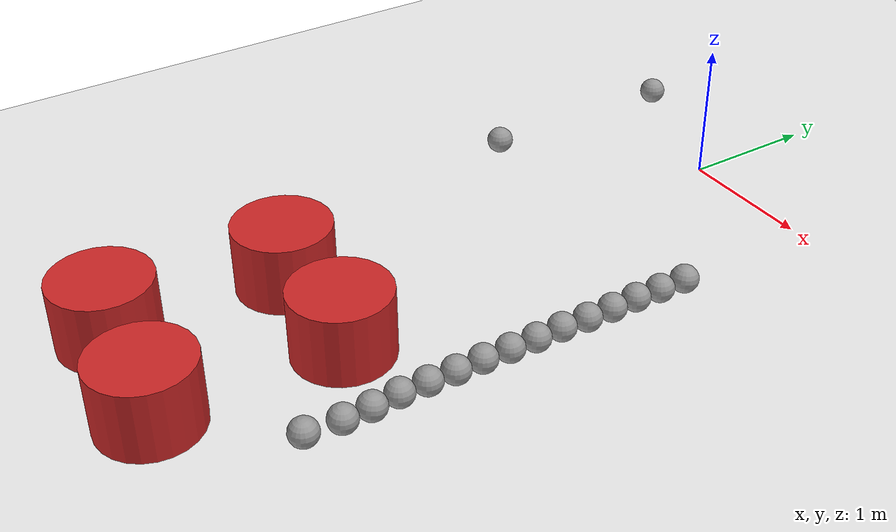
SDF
<sdf version="1.7">
 <world name="default">
  <model name="ground_plane">
   <static>1</static>
   <link name="link">
    <collision name="collision">
     <geometry><plane><normal>0 0 1</normal><size>100 100</size></plane></geometry>
     <surface>
      <contact><collide_bitmask>65535</collide_bitmask></contact>
      <friction><ode><mu>100</mu><mu2>50</mu2></ode></friction>
     </surface>
    </collision>
    <visual name="visual">
     <cast_shadows>0</cast_shadows>
     <geometry><plane><normal>0 0 1</normal><size>100 100</size></plane></geometry>
     <material>
      <script><uri>file://media/materials/scripts/gazebo.material</uri><name>Gazebo/White</name></script>
     </material>
    </visual>
   </link>
  </model>
  <model name="sphere_1">
   <link name="link_0">
    <inertial>
     <mass>1</mass>
     <inertia><ixx>0.1</ixx><ixy>0</ixy><ixz>0</ixz><iyy>0.1</iyy><iyz>0</iyz><izz>0.1</izz></inertia>
    </inertial>
    <visual name="visual">
     <geometry><sphere><radius>0.1</radius></sphere></geometry>
     <material>
      <lighting>1</lighting>
      <script><uri>file://media/materials/scripts/gazebo.material</uri><name>Gazebo/Grey</name></script>
      <shader type="pixel"><normal_map>__default__</normal_map></shader>
      <ambient>0.3 0.3 0.3 1</ambient>
      <diffuse>0.7 0.7 0.7 1</diffuse>
      <specular>0.01 0.01 0.01 1</specular>
      <emissive>0 0 0 1</emissive>
     </material>
    </visual>
    <collision name="collision">
     <geometry><sphere><radius>0.1</radius></sphere></geometry>
     <surface>
      <friction>
       <ode><mu>1</mu><mu2>1</mu2><fdir1>0 0 0</fdir1><slip1>0</slip1><slip2>0</slip2></ode>
       <torsional>
        <coefficient>1</coefficient>
        <patch_radius>0</patch_radius>
        <surface_radius>0</surface_radius>
        <use_patch_radius>1</use_patch_radius>
        <ode><slip>0</slip></ode>
       </torsional>
      </friction>
      <bounce><restitution_coefficient>0</restitution_coefficient><threshold>1e+06</threshold></bounce>
      <contact>
       <collide_without_contact>0</collide_without_contact>
       <collide_without_contact_bitmask>1</collide_without_contact_bitmask>
       <collide_bitmask>1</collide_bitmask>
       <ode>
        <soft_cfm>0</soft_cfm>
        <soft_erp>0.2</soft_erp>
        <kp>1e+13</kp>
        <kd>1</kd>
        <max_vel>0.01</max_vel>
        <min_depth>0</min_depth>
       </ode>
       <bullet>
        <split_impulse>1</split_impulse>
        <split_impulse_penetration_threshold>-0.01</split_impulse_penetration_threshold>
        <soft_cfm>0</soft_cfm>
        <soft_erp>0.2</soft_erp>
        <kp>1e+13</kp>
        <kd>1</kd>
       </bullet>
      </contact>
     </surface>
    </collision>
   </link>
   <static>0</static>
   <pose>-1.08492 0.403884 0.1 -0.010826 0.002979 -0.008224</pose>
  </model>
  <model name="sphere_12">
   <link name="link_0">
    <inertial>
     <mass>1</mass>
     <inertia><ixx>0.1</ixx><ixy>0</ixy><ixz>0</ixz><iyy>0.1</iyy><iyz>0</iyz><izz>0.1</izz></inertia>
    </inertial>
    <visual name="visual">
     <geometry><sphere><radius>0.1</radius></sphere></geometry>
     <material>
      <lighting>1</lighting>
      <script><uri>file://media/materials/scripts/gazebo.material</uri><name>Gazebo/Grey</name></script>
      <shader type="pixel"><normal_map>__default__</normal_map></shader>
      <ambient>0.3 0.3 0.3 1</ambient>
      <diffuse>0.7 0.7 0.7 1</diffuse>
      <specular>0.01 0.01 0.01 1</specular>
      <emissive>0 0 0 1</emissive>
     </material>
    </visual>
    <collision name="collision">
     <geometry><sphere><radius>0.1</radius></sphere></geometry>
     <surface>
      <friction>
       <ode><mu>1</mu><mu2>1</mu2><fdir1>0 0 0</fdir1><slip1>0</slip1><slip2>0</slip2></ode>
       <torsional>
        <coefficient>1</coefficient>
        <patch_radius>0</patch_radius>
        <surface_radius>0</surface_radius>
        <use_patch_radius>1</use_patch_radius>
        <ode><slip>0</slip></ode>
       </torsional>
      </friction>
      <bounce><restitution_coefficient>0</restitution_coefficient><threshold>1e+06</threshold></bounce>
      <contact>
       <collide_without_contact>0</collide_without_contact>
       <collide_without_contact_bitmask>1</collide_without_contact_bitmask>
       <collide_bitmask>1</collide_bitmask>
       <ode>
        <soft_cfm>0</soft_cfm>
        <soft_erp>0.2</soft_erp>
        <kp>1e+13</kp>
        <kd>1</kd>
        <max_vel>0.01</max_vel>
        <min_depth>0</min_depth>
       </ode>
       <bullet>
        <split_impulse>1</split_impulse>
        <split_impulse_penetration_threshold>-0.01</split_impulse_penetration_threshold>
        <soft_cfm>0</soft_cfm>
        <soft_erp>0.2</soft_erp>
        <kp>1e+13</kp>
        <kd>1</kd>
       </bullet>
      </contact>
     </surface>
    </collision>
   </link>
   <static>0</static>
   <pose>-1.09033 -1.14062 0.1 0 -0 0</pose>
  </model>
  <model name="sphere_38">
   <link name="link_0">
    <inertial>
     <mass>1</mass>
     <inertia><ixx>0.1</ixx><ixy>0</ixy><ixz>0</ixz><iyy>0.1</iyy><iyz>0</iyz><izz>0.1</izz></inertia>
    </inertial>
    <visual name="visual">
     <geometry><sphere><radius>0.1</radius></sphere></geometry>
     <material>
      <lighting>1</lighting>
      <script><uri>file://media/materials/scripts/gazebo.material</uri><name>Gazebo/Grey</name></script>
      <shader type="pixel"><normal_map>__default__</normal_map></shader>
      <ambient>0.3 0.3 0.3 1</ambient>
      <diffuse>0.7 0.7 0.7 1</diffuse>
      <specular>0.01 0.01 0.01 1</specular>
      <emissive>0 0 0 1</emissive>
     </material>
    </visual>
    <collision name="collision">
     <geometry><sphere><radius>0.1</radius></sphere></geometry>
     <surface>
      <friction>
       <ode><mu>1</mu><mu2>1</mu2><fdir1>0 0 0</fdir1><slip1>0</slip1><slip2>0</slip2></ode>
       <torsional>
        <coefficient>1</coefficient>
        <patch_radius>0</patch_radius>
        <surface_radius>0</surface_radius>
        <use_patch_radius>1</use_patch_radius>
        <ode><slip>0</slip></ode>
       </torsional>
      </friction>
      <bounce><restitution_coefficient>0</restitution_coefficient><threshold>1e+06</threshold></bounce>
      <contact>
       <collide_without_contact>0</collide_without_contact>
       <collide_without_contact_bitmask>1</collide_without_contact_bitmask>
       <collide_bitmask>1</collide_bitmask>
       <ode>
        <soft_cfm>0</soft_cfm>
        <soft_erp>0.2</soft_erp>
        <kp>1e+13</kp>
        <kd>1</kd>
        <max_vel>0.01</max_vel>
        <min_depth>0</min_depth>
       </ode>
       <bullet>
        <split_impulse>1</split_impulse>
        <split_impulse_penetration_threshold>-0.01</split_impulse_penetration_threshold>
        <soft_cfm>0</soft_cfm>
        <soft_erp>0.2</soft_erp>
        <kp>1e+13</kp>
        <kd>1</kd>
       </bullet>
      </contact>
     </surface>
    </collision>
   </link>
   <static>0</static>
   <pose>1.1388 -3.75583 0.1 -0.00572 0.049658 -0.007044</pose>
  </model>
  <model name="sphere_39">
   <link name="link_0">
    <inertial>
     <mass>1</mass>
     <inertia><ixx>0.1</ixx><ixy>0</ixy><ixz>0</ixz><iyy>0.1</iyy><iyz>0</iyz><izz>0.1</izz></inertia>
    </inertial>
    <visual name="visual">
     <geometry><sphere><radius>0.1</radius></sphere></geometry>
     <material>
      <lighting>1</lighting>
      <script><uri>file://media/materials/scripts/gazebo.material</uri><name>Gazebo/Grey</name></script>
      <shader type="pixel"><normal_map>__default__</normal_map></shader>
      <ambient>0.3 0.3 0.3 1</ambient>
      <diffuse>0.7 0.7 0.7 1</diffuse>
      <specular>0.01 0.01 0.01 1</specular>
      <emissive>0 0 0 1</emissive>
     </material>
    </visual>
    <collision name="collision">
     <geometry><sphere><radius>0.1</radius></sphere></geometry>
     <surface>
      <friction>
       <ode><mu>1</mu><mu2>1</mu2><fdir1>0 0 0</fdir1><slip1>0</slip1><slip2>0</slip2></ode>
       <torsional>
        <coefficient>1</coefficient>
        <patch_radius>0</patch_radius>
        <surface_radius>0</surface_radius>
        <use_patch_radius>1</use_patch_radius>
        <ode><slip>0</slip></ode>
       </torsional>
      </friction>
      <bounce><restitution_coefficient>0</restitution_coefficient><threshold>1e+06</threshold></bounce>
      <contact>
       <collide_without_contact>0</collide_without_contact>
       <collide_without_contact_bitmask>1</collide_without_contact_bitmask>
       <collide_bitmask>1</collide_bitmask>
       <ode>
        <soft_cfm>0</soft_cfm>
        <soft_erp>0.2</soft_erp>
        <kp>1e+13</kp>
        <kd>1</kd>
        <max_vel>0.01</max_vel>
        <min_depth>0</min_depth>
       </ode>
       <bullet>
        <split_impulse>1</split_impulse>
        <split_impulse_penetration_threshold>-0.01</split_impulse_penetration_threshold>
        <soft_cfm>0</soft_cfm>
        <soft_erp>0.2</soft_erp>
        <kp>1e+13</kp>
        <kd>1</kd>
       </bullet>
      </contact>
     </surface>
    </collision>
   </link>
   <static>0</static>
   <pose>1.13443 -3.55575 0.1 -0.101295 0.023621 0.037882</pose>
  </model>
  <model name="sphere_40">
   <link name="link_0">
    <inertial>
     <mass>1</mass>
     <inertia><ixx>0.1</ixx><ixy>0</ixy><ixz>0</ixz><iyy>0.1</iyy><iyz>0</iyz><izz>0.1</izz></inertia>
    </inertial>
    <visual name="visual">
     <geometry><sphere><radius>0.1</radius></sphere></geometry>
     <material>
      <lighting>1</lighting>
      <script><uri>file://media/materials/scripts/gazebo.material</uri><name>Gazebo/Grey</name></script>
      <shader type="pixel"><normal_map>__default__</normal_map></shader>
      <ambient>0.3 0.3 0.3 1</ambient>
      <diffuse>0.7 0.7 0.7 1</diffuse>
      <specular>0.01 0.01 0.01 1</specular>
      <emissive>0 0 0 1</emissive>
     </material>
    </visual>
    <collision name="collision">
     <geometry><sphere><radius>0.1</radius></sphere></geometry>
     <surface>
      <friction>
       <ode><mu>1</mu><mu2>1</mu2><fdir1>0 0 0</fdir1><slip1>0</slip1><slip2>0</slip2></ode>
       <torsional>
        <coefficient>1</coefficient>
        <patch_radius>0</patch_radius>
        <surface_radius>0</surface_radius>
        <use_patch_radius>1</use_patch_radius>
        <ode><slip>0</slip></ode>
       </torsional>
      </friction>
      <bounce><restitution_coefficient>0</restitution_coefficient><threshold>1e+06</threshold></bounce>
      <contact>
       <collide_without_contact>0</collide_without_contact>
       <collide_without_contact_bitmask>1</collide_without_contact_bitmask>
       <collide_bitmask>1</collide_bitmask>
       <ode>
        <soft_cfm>0</soft_cfm>
        <soft_erp>0.2</soft_erp>
        <kp>1e+13</kp>
        <kd>1</kd>
        <max_vel>0.01</max_vel>
        <min_depth>0</min_depth>
       </ode>
       <bullet>
        <split_impulse>1</split_impulse>
        <split_impulse_penetration_threshold>-0.01</split_impulse_penetration_threshold>
        <soft_cfm>0</soft_cfm>
        <soft_erp>0.2</soft_erp>
        <kp>1e+13</kp>
        <kd>1</kd>
       </bullet>
      </contact>
     </surface>
    </collision>
   </link>
   <static>0</static>
   <pose>1.11807 -3.35616 0.1 0.003486 -0.017971 0.006857</pose>
  </model>
  <model name="sphere_41">
   <link name="link_0">
    <inertial>
     <mass>1</mass>
     <inertia><ixx>0.1</ixx><ixy>0</ixy><ixz>0</ixz><iyy>0.1</iyy><iyz>0</iyz><izz>0.1</izz></inertia>
    </inertial>
    <visual name="visual">
     <geometry><sphere><radius>0.1</radius></sphere></geometry>
     <material>
      <lighting>1</lighting>
      <script><uri>file://media/materials/scripts/gazebo.material</uri><name>Gazebo/Grey</name></script>
      <shader type="pixel"><normal_map>__default__</normal_map></shader>
      <ambient>0.3 0.3 0.3 1</ambient>
      <diffuse>0.7 0.7 0.7 1</diffuse>
      <specular>0.01 0.01 0.01 1</specular>
      <emissive>0 0 0 1</emissive>
     </material>
    </visual>
    <collision name="collision">
     <geometry><sphere><radius>0.1</radius></sphere></geometry>
     <surface>
      <friction>
       <ode><mu>1</mu><mu2>1</mu2><fdir1>0 0 0</fdir1><slip1>0</slip1><slip2>0</slip2></ode>
       <torsional>
        <coefficient>1</coefficient>
        <patch_radius>0</patch_radius>
        <surface_radius>0</surface_radius>
        <use_patch_radius>1</use_patch_radius>
        <ode><slip>0</slip></ode>
       </torsional>
      </friction>
      <bounce><restitution_coefficient>0</restitution_coefficient><threshold>1e+06</threshold></bounce>
      <contact>
       <collide_without_contact>0</collide_without_contact>
       <collide_without_contact_bitmask>1</collide_without_contact_bitmask>
       <collide_bitmask>1</collide_bitmask>
       <ode>
        <soft_cfm>0</soft_cfm>
        <soft_erp>0.2</soft_erp>
        <kp>1e+13</kp>
        <kd>1</kd>
        <max_vel>0.01</max_vel>
        <min_depth>0</min_depth>
       </ode>
       <bullet>
        <split_impulse>1</split_impulse>
        <split_impulse_penetration_threshold>-0.01</split_impulse_penetration_threshold>
        <soft_cfm>0</soft_cfm>
        <soft_erp>0.2</soft_erp>
        <kp>1e+13</kp>
        <kd>1</kd>
       </bullet>
      </contact>
     </surface>
    </collision>
   </link>
   <static>0</static>
   <pose>1.11838 -3.15616 0.1 0.030999 -0.008864 -0.015569</pose>
  </model>
  <model name="sphere_42">
   <link name="link_0">
    <inertial>
     <mass>1</mass>
     <inertia><ixx>0.1</ixx><ixy>0</ixy><ixz>0</ixz><iyy>0.1</iyy><iyz>0</iyz><izz>0.1</izz></inertia>
    </inertial>
    <visual name="visual">
     <geometry><sphere><radius>0.1</radius></sphere></geometry>
     <material>
      <lighting>1</lighting>
      <script><uri>file://media/materials/scripts/gazebo.material</uri><name>Gazebo/Grey</name></script>
      <shader type="pixel"><normal_map>__default__</normal_map></shader>
      <ambient>0.3 0.3 0.3 1</ambient>
      <diffuse>0.7 0.7 0.7 1</diffuse>
      <specular>0.01 0.01 0.01 1</specular>
      <emissive>0 0 0 1</emissive>
     </material>
    </visual>
    <collision name="collision">
     <geometry><sphere><radius>0.1</radius></sphere></geometry>
     <surface>
      <friction>
       <ode><mu>1</mu><mu2>1</mu2><fdir1>0 0 0</fdir1><slip1>0</slip1><slip2>0</slip2></ode>
       <torsional>
        <coefficient>1</coefficient>
        <patch_radius>0</patch_radius>
        <surface_radius>0</surface_radius>
        <use_patch_radius>1</use_patch_radius>
        <ode><slip>0</slip></ode>
       </torsional>
      </friction>
      <bounce><restitution_coefficient>0</restitution_coefficient><threshold>1e+06</threshold></bounce>
      <contact>
       <collide_without_contact>0</collide_without_contact>
       <collide_without_contact_bitmask>1</collide_without_contact_bitmask>
       <collide_bitmask>1</collide_bitmask>
       <ode>
        <soft_cfm>0</soft_cfm>
        <soft_erp>0.2</soft_erp>
        <kp>1e+13</kp>
        <kd>1</kd>
        <max_vel>0.01</max_vel>
        <min_depth>0</min_depth>
       </ode>
       <bullet>
        <split_impulse>1</split_impulse>
        <split_impulse_penetration_threshold>-0.01</split_impulse_penetration_threshold>
        <soft_cfm>0</soft_cfm>
        <soft_erp>0.2</soft_erp>
        <kp>1e+13</kp>
        <kd>1</kd>
       </bullet>
      </contact>
     </surface>
    </collision>
   </link>
   <static>0</static>
   <pose>1.12229 -2.9562 0.1 0.01491 0.007536 0.001946</pose>
  </model>
  <model name="sphere_43">
   <link name="link_0">
    <inertial>
     <mass>1</mass>
     <inertia><ixx>0.1</ixx><ixy>0</ixy><ixz>0</ixz><iyy>0.1</iyy><iyz>0</iyz><izz>0.1</izz></inertia>
    </inertial>
    <visual name="visual">
     <geometry><sphere><radius>0.1</radius></sphere></geometry>
     <material>
      <lighting>1</lighting>
      <script><uri>file://media/materials/scripts/gazebo.material</uri><name>Gazebo/Grey</name></script>
      <shader type="pixel"><normal_map>__default__</normal_map></shader>
      <ambient>0.3 0.3 0.3 1</ambient>
      <diffuse>0.7 0.7 0.7 1</diffuse>
      <specular>0.01 0.01 0.01 1</specular>
      <emissive>0 0 0 1</emissive>
     </material>
    </visual>
    <collision name="collision">
     <geometry><sphere><radius>0.1</radius></sphere></geometry>
     <surface>
      <friction>
       <ode><mu>1</mu><mu2>1</mu2><fdir1>0 0 0</fdir1><slip1>0</slip1><slip2>0</slip2></ode>
       <torsional>
        <coefficient>1</coefficient>
        <patch_radius>0</patch_radius>
        <surface_radius>0</surface_radius>
        <use_patch_radius>1</use_patch_radius>
        <ode><slip>0</slip></ode>
       </torsional>
      </friction>
      <bounce><restitution_coefficient>0</restitution_coefficient><threshold>1e+06</threshold></bounce>
      <contact>
       <collide_without_contact>0</collide_without_contact>
       <collide_without_contact_bitmask>1</collide_without_contact_bitmask>
       <collide_bitmask>1</collide_bitmask>
       <ode>
        <soft_cfm>0</soft_cfm>
        <soft_erp>0.2</soft_erp>
        <kp>1e+13</kp>
        <kd>1</kd>
        <max_vel>0.01</max_vel>
        <min_depth>0</min_depth>
       </ode>
       <bullet>
        <split_impulse>1</split_impulse>
        <split_impulse_penetration_threshold>-0.01</split_impulse_penetration_threshold>
        <soft_cfm>0</soft_cfm>
        <soft_erp>0.2</soft_erp>
        <kp>1e+13</kp>
        <kd>1</kd>
       </bullet>
      </contact>
     </surface>
    </collision>
   </link>
   <static>0</static>
   <pose>1.12065 -2.7562 0.1 -0.039361 -0.001694 0.003178</pose>
  </model>
  <model name="sphere_44">
   <link name="link_0">
    <inertial>
     <mass>1</mass>
     <inertia><ixx>0.1</ixx><ixy>0</ixy><ixz>0</ixz><iyy>0.1</iyy><iyz>0</iyz><izz>0.1</izz></inertia>
    </inertial>
    <visual name="visual">
     <geometry><sphere><radius>0.1</radius></sphere></geometry>
     <material>
      <lighting>1</lighting>
      <script><uri>file://media/materials/scripts/gazebo.material</uri><name>Gazebo/Grey</name></script>
      <shader type="pixel"><normal_map>__default__</normal_map></shader>
      <ambient>0.3 0.3 0.3 1</ambient>
      <diffuse>0.7 0.7 0.7 1</diffuse>
      <specular>0.01 0.01 0.01 1</specular>
      <emissive>0 0 0 1</emissive>
     </material>
    </visual>
    <collision name="collision">
     <geometry><sphere><radius>0.1</radius></sphere></geometry>
     <surface>
      <friction>
       <ode><mu>1</mu><mu2>1</mu2><fdir1>0 0 0</fdir1><slip1>0</slip1><slip2>0</slip2></ode>
       <torsional>
        <coefficient>1</coefficient>
        <patch_radius>0</patch_radius>
        <surface_radius>0</surface_radius>
        <use_patch_radius>1</use_patch_radius>
        <ode><slip>0</slip></ode>
       </torsional>
      </friction>
      <bounce><restitution_coefficient>0</restitution_coefficient><threshold>1e+06</threshold></bounce>
      <contact>
       <collide_without_contact>0</collide_without_contact>
       <collide_without_contact_bitmask>1</collide_without_contact_bitmask>
       <collide_bitmask>1</collide_bitmask>
       <ode>
        <soft_cfm>0</soft_cfm>
        <soft_erp>0.2</soft_erp>
        <kp>1e+13</kp>
        <kd>1</kd>
        <max_vel>0.01</max_vel>
        <min_depth>0</min_depth>
       </ode>
       <bullet>
        <split_impulse>1</split_impulse>
        <split_impulse_penetration_threshold>-0.01</split_impulse_penetration_threshold>
        <soft_cfm>0</soft_cfm>
        <soft_erp>0.2</soft_erp>
        <kp>1e+13</kp>
        <kd>1</kd>
       </bullet>
      </contact>
     </surface>
    </collision>
   </link>
   <static>0</static>
   <pose>1.12624 -2.55556 0.1 0.054611 0.001127 -0.006361</pose>
  </model>
  <model name="sphere_45">
   <link name="link_0">
    <inertial>
     <mass>1</mass>
     <inertia><ixx>0.1</ixx><ixy>0</ixy><ixz>0</ixz><iyy>0.1</iyy><iyz>0</iyz><izz>0.1</izz></inertia>
    </inertial>
    <visual name="visual">
     <geometry><sphere><radius>0.1</radius></sphere></geometry>
     <material>
      <lighting>1</lighting>
      <script><uri>file://media/materials/scripts/gazebo.material</uri><name>Gazebo/Grey</name></script>
      <shader type="pixel"><normal_map>__default__</normal_map></shader>
      <ambient>0.3 0.3 0.3 1</ambient>
      <diffuse>0.7 0.7 0.7 1</diffuse>
      <specular>0.01 0.01 0.01 1</specular>
      <emissive>0 0 0 1</emissive>
     </material>
    </visual>
    <collision name="collision">
     <geometry><sphere><radius>0.1</radius></sphere></geometry>
     <surface>
      <friction>
       <ode><mu>1</mu><mu2>1</mu2><fdir1>0 0 0</fdir1><slip1>0</slip1><slip2>0</slip2></ode>
       <torsional>
        <coefficient>1</coefficient>
        <patch_radius>0</patch_radius>
        <surface_radius>0</surface_radius>
        <use_patch_radius>1</use_patch_radius>
        <ode><slip>0</slip></ode>
       </torsional>
      </friction>
      <bounce><restitution_coefficient>0</restitution_coefficient><threshold>1e+06</threshold></bounce>
      <contact>
       <collide_without_contact>0</collide_without_contact>
       <collide_without_contact_bitmask>1</collide_without_contact_bitmask>
       <collide_bitmask>1</collide_bitmask>
       <ode>
        <soft_cfm>0</soft_cfm>
        <soft_erp>0.2</soft_erp>
        <kp>1e+13</kp>
        <kd>1</kd>
        <max_vel>0.01</max_vel>
        <min_depth>0</min_depth>
       </ode>
       <bullet>
        <split_impulse>1</split_impulse>
        <split_impulse_penetration_threshold>-0.01</split_impulse_penetration_threshold>
        <soft_cfm>0</soft_cfm>
        <soft_erp>0.2</soft_erp>
        <kp>1e+13</kp>
        <kd>1</kd>
       </bullet>
      </contact>
     </surface>
    </collision>
   </link>
   <static>0</static>
   <pose>1.12868 -2.35556 0.1 -0.057825 0.002762 0.00639</pose>
  </model>
  <model name="sphere_46">
   <link name="link_0">
    <inertial>
     <mass>1</mass>
     <inertia><ixx>0.1</ixx><ixy>0</ixy><ixz>0</ixz><iyy>0.1</iyy><iyz>0</iyz><izz>0.1</izz></inertia>
    </inertial>
    <visual name="visual">
     <geometry><sphere><radius>0.1</radius></sphere></geometry>
     <material>
      <lighting>1</lighting>
      <script><uri>file://media/materials/scripts/gazebo.material</uri><name>Gazebo/Grey</name></script>
      <shader type="pixel"><normal_map>__default__</normal_map></shader>
      <ambient>0.3 0.3 0.3 1</ambient>
      <diffuse>0.7 0.7 0.7 1</diffuse>
      <specular>0.01 0.01 0.01 1</specular>
      <emissive>0 0 0 1</emissive>
     </material>
    </visual>
    <collision name="collision">
     <geometry><sphere><radius>0.1</radius></sphere></geometry>
     <surface>
      <friction>
       <ode><mu>1</mu><mu2>1</mu2><fdir1>0 0 0</fdir1><slip1>0</slip1><slip2>0</slip2></ode>
       <torsional>
        <coefficient>1</coefficient>
        <patch_radius>0</patch_radius>
        <surface_radius>0</surface_radius>
        <use_patch_radius>1</use_patch_radius>
        <ode><slip>0</slip></ode>
       </torsional>
      </friction>
      <bounce><restitution_coefficient>0</restitution_coefficient><threshold>1e+06</threshold></bounce>
      <contact>
       <collide_without_contact>0</collide_without_contact>
       <collide_without_contact_bitmask>1</collide_without_contact_bitmask>
       <collide_bitmask>1</collide_bitmask>
       <ode>
        <soft_cfm>0</soft_cfm>
        <soft_erp>0.2</soft_erp>
        <kp>1e+13</kp>
        <kd>1</kd>
        <max_vel>0.01</max_vel>
        <min_depth>0</min_depth>
       </ode>
       <bullet>
        <split_impulse>1</split_impulse>
        <split_impulse_penetration_threshold>-0.01</split_impulse_penetration_threshold>
        <soft_cfm>0</soft_cfm>
        <soft_erp>0.2</soft_erp>
        <kp>1e+13</kp>
        <kd>1</kd>
       </bullet>
      </contact>
     </surface>
    </collision>
   </link>
   <static>0</static>
   <pose>1.12733 -2.15556 0.1 -0.000433 -0.003305 -0.001016</pose>
  </model>
  <model name="sphere_47">
   <link name="link_0">
    <inertial>
     <mass>1</mass>
     <inertia><ixx>0.1</ixx><ixy>0</ixy><ixz>0</ixz><iyy>0.1</iyy><iyz>0</iyz><izz>0.1</izz></inertia>
    </inertial>
    <visual name="visual">
     <geometry><sphere><radius>0.1</radius></sphere></geometry>
     <material>
      <lighting>1</lighting>
      <script><uri>file://media/materials/scripts/gazebo.material</uri><name>Gazebo/Grey</name></script>
      <shader type="pixel"><normal_map>__default__</normal_map></shader>
      <ambient>0.3 0.3 0.3 1</ambient>
      <diffuse>0.7 0.7 0.7 1</diffuse>
      <specular>0.01 0.01 0.01 1</specular>
      <emissive>0 0 0 1</emissive>
     </material>
    </visual>
    <collision name="collision">
     <geometry><sphere><radius>0.1</radius></sphere></geometry>
     <surface>
      <friction>
       <ode><mu>1</mu><mu2>1</mu2><fdir1>0 0 0</fdir1><slip1>0</slip1><slip2>0</slip2></ode>
       <torsional>
        <coefficient>1</coefficient>
        <patch_radius>0</patch_radius>
        <surface_radius>0</surface_radius>
        <use_patch_radius>1</use_patch_radius>
        <ode><slip>0</slip></ode>
       </torsional>
      </friction>
      <bounce><restitution_coefficient>0</restitution_coefficient><threshold>1e+06</threshold></bounce>
      <contact>
       <collide_without_contact>0</collide_without_contact>
       <collide_without_contact_bitmask>1</collide_without_contact_bitmask>
       <collide_bitmask>1</collide_bitmask>
       <ode>
        <soft_cfm>0</soft_cfm>
        <soft_erp>0.2</soft_erp>
        <kp>1e+13</kp>
        <kd>1</kd>
        <max_vel>0.01</max_vel>
        <min_depth>0</min_depth>
       </ode>
       <bullet>
        <split_impulse>1</split_impulse>
        <split_impulse_penetration_threshold>-0.01</split_impulse_penetration_threshold>
        <soft_cfm>0</soft_cfm>
        <soft_erp>0.2</soft_erp>
        <kp>1e+13</kp>
        <kd>1</kd>
       </bullet>
      </contact>
     </surface>
    </collision>
   </link>
   <static>0</static>
   <pose>1.13582 -1.9557 0.1 0.04364 0.00526 -0.008315</pose>
  </model>
  <model name="sphere_48">
   <link name="link_0">
    <inertial>
     <mass>1</mass>
     <inertia><ixx>0.1</ixx><ixy>0</ixy><ixz>0</ixz><iyy>0.1</iyy><iyz>0</iyz><izz>0.1</izz></inertia>
    </inertial>
    <visual name="visual">
     <geometry><sphere><radius>0.1</radius></sphere></geometry>
     <material>
      <lighting>1</lighting>
      <script><uri>file://media/materials/scripts/gazebo.material</uri><name>Gazebo/Grey</name></script>
      <shader type="pixel"><normal_map>__default__</normal_map></shader>
      <ambient>0.3 0.3 0.3 1</ambient>
      <diffuse>0.7 0.7 0.7 1</diffuse>
      <specular>0.01 0.01 0.01 1</specular>
      <emissive>0 0 0 1</emissive>
     </material>
    </visual>
    <collision name="collision">
     <geometry><sphere><radius>0.1</radius></sphere></geometry>
     <surface>
      <friction>
       <ode><mu>1</mu><mu2>1</mu2><fdir1>0 0 0</fdir1><slip1>0</slip1><slip2>0</slip2></ode>
       <torsional>
        <coefficient>1</coefficient>
        <patch_radius>0</patch_radius>
        <surface_radius>0</surface_radius>
        <use_patch_radius>1</use_patch_radius>
        <ode><slip>0</slip></ode>
       </torsional>
      </friction>
      <bounce><restitution_coefficient>0</restitution_coefficient><threshold>1e+06</threshold></bounce>
      <contact>
       <collide_without_contact>0</collide_without_contact>
       <collide_without_contact_bitmask>1</collide_without_contact_bitmask>
       <collide_bitmask>1</collide_bitmask>
       <ode>
        <soft_cfm>0</soft_cfm>
        <soft_erp>0.2</soft_erp>
        <kp>1e+13</kp>
        <kd>1</kd>
        <max_vel>0.01</max_vel>
        <min_depth>0</min_depth>
       </ode>
       <bullet>
        <split_impulse>1</split_impulse>
        <split_impulse_penetration_threshold>-0.01</split_impulse_penetration_threshold>
        <soft_cfm>0</soft_cfm>
        <soft_erp>0.2</soft_erp>
        <kp>1e+13</kp>
        <kd>1</kd>
       </bullet>
      </contact>
     </surface>
    </collision>
   </link>
   <static>0</static>
   <pose>1.13835 -1.75571 0.1 -0.039051 0.007384 0.007707</pose>
  </model>
  <model name="sphere_49">
   <link name="link_0">
    <inertial>
     <mass>1</mass>
     <inertia><ixx>0.1</ixx><ixy>0</ixy><ixz>0</ixz><iyy>0.1</iyy><iyz>0</iyz><izz>0.1</izz></inertia>
    </inertial>
    <visual name="visual">
     <geometry><sphere><radius>0.1</radius></sphere></geometry>
     <material>
      <lighting>1</lighting>
      <script><uri>file://media/materials/scripts/gazebo.material</uri><name>Gazebo/Grey</name></script>
      <shader type="pixel"><normal_map>__default__</normal_map></shader>
      <ambient>0.3 0.3 0.3 1</ambient>
      <diffuse>0.7 0.7 0.7 1</diffuse>
      <specular>0.01 0.01 0.01 1</specular>
      <emissive>0 0 0 1</emissive>
     </material>
    </visual>
    <collision name="collision">
     <geometry><sphere><radius>0.1</radius></sphere></geometry>
     <surface>
      <friction>
       <ode><mu>1</mu><mu2>1</mu2><fdir1>0 0 0</fdir1><slip1>0</slip1><slip2>0</slip2></ode>
       <torsional>
        <coefficient>1</coefficient>
        <patch_radius>0</patch_radius>
        <surface_radius>0</surface_radius>
        <use_patch_radius>1</use_patch_radius>
        <ode><slip>0</slip></ode>
       </torsional>
      </friction>
      <bounce><restitution_coefficient>0</restitution_coefficient><threshold>1e+06</threshold></bounce>
      <contact>
       <collide_without_contact>0</collide_without_contact>
       <collide_without_contact_bitmask>1</collide_without_contact_bitmask>
       <collide_bitmask>1</collide_bitmask>
       <ode>
        <soft_cfm>0</soft_cfm>
        <soft_erp>0.2</soft_erp>
        <kp>1e+13</kp>
        <kd>1</kd>
        <max_vel>0.01</max_vel>
        <min_depth>0</min_depth>
       </ode>
       <bullet>
        <split_impulse>1</split_impulse>
        <split_impulse_penetration_threshold>-0.01</split_impulse_penetration_threshold>
        <soft_cfm>0</soft_cfm>
        <soft_erp>0.2</soft_erp>
        <kp>1e+13</kp>
        <kd>1</kd>
       </bullet>
      </contact>
     </surface>
    </collision>
   </link>
   <static>0</static>
   <pose>1.13568 -1.55571 0.1 0.012705 -0.004397 0.004772</pose>
  </model>
  <model name="sphere_50">
   <link name="link_0">
    <inertial>
     <mass>1</mass>
     <inertia><ixx>0.1</ixx><ixy>0</ixy><ixz>0</ixz><iyy>0.1</iyy><iyz>0</iyz><izz>0.1</izz></inertia>
    </inertial>
    <visual name="visual">
     <geometry><sphere><radius>0.1</radius></sphere></geometry>
     <material>
      <lighting>1</lighting>
      <script><uri>file://media/materials/scripts/gazebo.material</uri><name>Gazebo/Grey</name></script>
      <shader type="pixel"><normal_map>__default__</normal_map></shader>
      <ambient>0.3 0.3 0.3 1</ambient>
      <diffuse>0.7 0.7 0.7 1</diffuse>
      <specular>0.01 0.01 0.01 1</specular>
      <emissive>0 0 0 1</emissive>
     </material>
    </visual>
    <collision name="collision">
     <geometry><sphere><radius>0.1</radius></sphere></geometry>
     <surface>
      <friction>
       <ode><mu>1</mu><mu2>1</mu2><fdir1>0 0 0</fdir1><slip1>0</slip1><slip2>0</slip2></ode>
       <torsional>
        <coefficient>1</coefficient>
        <patch_radius>0</patch_radius>
        <surface_radius>0</surface_radius>
        <use_patch_radius>1</use_patch_radius>
        <ode><slip>0</slip></ode>
       </torsional>
      </friction>
      <bounce><restitution_coefficient>0</restitution_coefficient><threshold>1e+06</threshold></bounce>
      <contact>
       <collide_without_contact>0</collide_without_contact>
       <collide_without_contact_bitmask>1</collide_without_contact_bitmask>
       <collide_bitmask>1</collide_bitmask>
       <ode>
        <soft_cfm>0</soft_cfm>
        <soft_erp>0.2</soft_erp>
        <kp>1e+13</kp>
        <kd>1</kd>
        <max_vel>0.01</max_vel>
        <min_depth>0</min_depth>
       </ode>
       <bullet>
        <split_impulse>1</split_impulse>
        <split_impulse_penetration_threshold>-0.01</split_impulse_penetration_threshold>
        <soft_cfm>0</soft_cfm>
        <soft_erp>0.2</soft_erp>
        <kp>1e+13</kp>
        <kd>1</kd>
       </bullet>
      </contact>
     </surface>
    </collision>
   </link>
   <static>0</static>
   <pose>1.14221 -1.3558 0.1 0.010688 -0.014723 0.009749</pose>
  </model>
  <model name="sphere_51">
   <link name="link_0">
    <inertial>
     <mass>1</mass>
     <inertia><ixx>0.1</ixx><ixy>0</ixy><ixz>0</ixz><iyy>0.1</iyy><iyz>0</iyz><izz>0.1</izz></inertia>
    </inertial>
    <visual name="visual">
     <geometry><sphere><radius>0.1</radius></sphere></geometry>
     <material>
      <lighting>1</lighting>
      <script><uri>file://media/materials/scripts/gazebo.material</uri><name>Gazebo/Grey</name></script>
      <shader type="pixel"><normal_map>__default__</normal_map></shader>
      <ambient>0.3 0.3 0.3 1</ambient>
      <diffuse>0.7 0.7 0.7 1</diffuse>
      <specular>0.01 0.01 0.01 1</specular>
      <emissive>0 0 0 1</emissive>
     </material>
    </visual>
    <collision name="collision">
     <geometry><sphere><radius>0.1</radius></sphere></geometry>
     <surface>
      <friction>
       <ode><mu>1</mu><mu2>1</mu2><fdir1>0 0 0</fdir1><slip1>0</slip1><slip2>0</slip2></ode>
       <torsional>
        <coefficient>1</coefficient>
        <patch_radius>0</patch_radius>
        <surface_radius>0</surface_radius>
        <use_patch_radius>1</use_patch_radius>
        <ode><slip>0</slip></ode>
       </torsional>
      </friction>
      <bounce><restitution_coefficient>0</restitution_coefficient><threshold>1e+06</threshold></bounce>
      <contact>
       <collide_without_contact>0</collide_without_contact>
       <collide_without_contact_bitmask>1</collide_without_contact_bitmask>
       <collide_bitmask>1</collide_bitmask>
       <ode>
        <soft_cfm>0</soft_cfm>
        <soft_erp>0.2</soft_erp>
        <kp>1e+13</kp>
        <kd>1</kd>
        <max_vel>0.01</max_vel>
        <min_depth>0</min_depth>
       </ode>
       <bullet>
        <split_impulse>1</split_impulse>
        <split_impulse_penetration_threshold>-0.01</split_impulse_penetration_threshold>
        <soft_cfm>0</soft_cfm>
        <soft_erp>0.2</soft_erp>
        <kp>1e+13</kp>
        <kd>1</kd>
       </bullet>
      </contact>
     </surface>
    </collision>
   </link>
   <static>0</static>
   <pose>1.14735 -1.14886 0.1 -0.107007 -0.043415 -0.015377</pose>
  </model>
  <model name="sphere_37">
   <link name="link_0">
    <inertial>
     <mass>1</mass>
     <inertia><ixx>0.1</ixx><ixy>0</ixy><ixz>0</ixz><iyy>0.1</iyy><iyz>0</iyz><izz>0.1</izz></inertia>
    </inertial>
    <visual name="visual">
     <geometry><sphere><radius>0.1</radius></sphere></geometry>
     <material>
      <lighting>1</lighting>
      <script><uri>file://media/materials/scripts/gazebo.material</uri><name>Gazebo/Grey</name></script>
      <shader type="pixel"><normal_map>__default__</normal_map></shader>
      <ambient>0.3 0.3 0.3 1</ambient>
      <diffuse>0.7 0.7 0.7 1</diffuse>
      <specular>0.01 0.01 0.01 1</specular>
      <emissive>0 0 0 1</emissive>
     </material>
    </visual>
    <collision name="collision">
     <geometry><sphere><radius>0.1</radius></sphere></geometry>
     <surface>
      <friction>
       <ode><mu>1</mu><mu2>1</mu2><fdir1>0 0 0</fdir1><slip1>0</slip1><slip2>0</slip2></ode>
       <torsional>
        <coefficient>1</coefficient>
        <patch_radius>0</patch_radius>
        <surface_radius>0</surface_radius>
        <use_patch_radius>1</use_patch_radius>
        <ode><slip>0</slip></ode>
       </torsional>
      </friction>
      <bounce><restitution_coefficient>0</restitution_coefficient><threshold>1e+06</threshold></bounce>
      <contact>
       <collide_without_contact>0</collide_without_contact>
       <collide_without_contact_bitmask>1</collide_without_contact_bitmask>
       <collide_bitmask>1</collide_bitmask>
       <ode>
        <soft_cfm>0</soft_cfm>
        <soft_erp>0.2</soft_erp>
        <kp>1e+13</kp>
        <kd>1</kd>
        <max_vel>0.01</max_vel>
        <min_depth>0</min_depth>
       </ode>
       <bullet>
        <split_impulse>1</split_impulse>
        <split_impulse_penetration_threshold>-0.01</split_impulse_penetration_threshold>
        <soft_cfm>0</soft_cfm>
        <soft_erp>0.2</soft_erp>
        <kp>1e+13</kp>
        <kd>1</kd>
       </bullet>
      </contact>
     </surface>
    </collision>
   </link>
   <static>0</static>
   <pose>1.11833 -4.00266 0.1 0 -0 0</pose>
  </model>
  <model name="model8.1_0">
   <link name="link_1">
    <inertial>
     <mass>1</mass>
     <inertia><ixx>0.145833</ixx><ixy>0</ixy><ixz>0</ixz><iyy>0.145833</iyy><iyz>0</iyz><izz>0.125</izz></inertia>
    </inertial>
    <visual name="visual">
     <geometry><cylinder><radius>0.35</radius><length>0.5</length></cylinder></geometry>
     <material>
      <lighting>1</lighting>
      <script><uri>file://media/materials/scripts/gazebo.material</uri><name>Gazebo/Red</name></script>
      <shader type="pixel"><normal_map>__default__</normal_map></shader>
      <ambient>0.3 0.3 0.3 1</ambient>
      <diffuse>0.7 0.7 0.7 1</diffuse>
      <specular>0.01 0.01 0.01 1</specular>
      <emissive>0 0 0 1</emissive>
     </material>
    </visual>
    <collision name="collision">
     <geometry><cylinder><radius>0.35</radius><length>0.5</length></cylinder></geometry>
     <surface>
      <friction>
       <ode><mu>1</mu><mu2>1</mu2><fdir1>0 0 0</fdir1><slip1>0</slip1><slip2>0</slip2></ode>
       <torsional>
        <coefficient>1</coefficient>
        <patch_radius>0</patch_radius>
        <surface_radius>0</surface_radius>
        <use_patch_radius>1</use_patch_radius>
        <ode><slip>0</slip></ode>
       </torsional>
      </friction>
      <bounce><restitution_coefficient>0</restitution_coefficient><threshold>1e+06</threshold></bounce>
      <contact>
       <collide_without_contact>0</collide_without_contact>
       <collide_without_contact_bitmask>1</collide_without_contact_bitmask>
       <collide_bitmask>1</collide_bitmask>
       <ode>
        <soft_cfm>0</soft_cfm>
        <soft_erp>0.2</soft_erp>
        <kp>1e+13</kp>
        <kd>1</kd>
        <max_vel>0.01</max_vel>
        <min_depth>0</min_depth>
       </ode>
       <bullet>
        <split_impulse>1</split_impulse>
        <split_impulse_penetration_threshold>-0.01</split_impulse_penetration_threshold>
        <soft_cfm>0</soft_cfm>
        <soft_erp>0.2</soft_erp>
        <kp>1e+13</kp>
        <kd>1</kd>
       </bullet>
      </contact>
     </surface>
    </collision>
   </link>
   <static>0</static>
   <pose>-0.434568 -4.60531 0.249999 0 -0 0</pose>
  </model>
  <model name="model8.1_1">
   <link name="link_1">
    <inertial>
     <mass>1</mass>
     <inertia><ixx>0.145833</ixx><ixy>0</ixy><ixz>0</ixz><iyy>0.145833</iyy><iyz>0</iyz><izz>0.125</izz></inertia>
    </inertial>
    <visual name="visual">
     <geometry><cylinder><radius>0.35</radius><length>0.5</length></cylinder></geometry>
     <material>
      <lighting>1</lighting>
      <script><uri>file://media/materials/scripts/gazebo.material</uri><name>Gazebo/Red</name></script>
      <shader type="pixel"><normal_map>__default__</normal_map></shader>
      <ambient>0.3 0.3 0.3 1</ambient>
      <diffuse>0.7 0.7 0.7 1</diffuse>
      <specular>0.01 0.01 0.01 1</specular>
      <emissive>0 0 0 1</emissive>
     </material>
    </visual>
    <collision name="collision">
     <geometry><cylinder><radius>0.35</radius><length>0.5</length></cylinder></geometry>
     <surface>
      <friction>
       <ode><mu>1</mu><mu2>1</mu2><fdir1>0 0 0</fdir1><slip1>0</slip1><slip2>0</slip2></ode>
       <torsional>
        <coefficient>1</coefficient>
        <patch_radius>0</patch_radius>
        <surface_radius>0</surface_radius>
        <use_patch_radius>1</use_patch_radius>
        <ode><slip>0</slip></ode>
       </torsional>
      </friction>
      <bounce><restitution_coefficient>0</restitution_coefficient><threshold>1e+06</threshold></bounce>
      <contact>
       <collide_without_contact>0</collide_without_contact>
       <collide_without_contact_bitmask>1</collide_without_contact_bitmask>
       <collide_bitmask>1</collide_bitmask>
       <ode>
        <soft_cfm>0</soft_cfm>
        <soft_erp>0.2</soft_erp>
        <kp>1e+13</kp>
        <kd>1</kd>
        <max_vel>0.01</max_vel>
        <min_depth>0</min_depth>
       </ode>
       <bullet>
        <split_impulse>1</split_impulse>
        <split_impulse_penetration_threshold>-0.01</split_impulse_penetration_threshold>
        <soft_cfm>0</soft_cfm>
        <soft_erp>0.2</soft_erp>
        <kp>1e+13</kp>
        <kd>1</kd>
       </bullet>
      </contact>
     </surface>
    </collision>
   </link>
   <static>0</static>
   <pose>0.451519 -4.68568 0.249999 0 -0 0</pose>
  </model>
  <model name="model8.3_1">
   <link name="link_1">
    <inertial>
     <mass>1</mass>
     <inertia><ixx>0.145833</ixx><ixy>0</ixy><ixz>0</ixz><iyy>0.145833</iyy><iyz>0</iyz><izz>0.125</izz></inertia>
    </inertial>
    <visual name="visual">
     <geometry><cylinder><radius>0.35</radius><length>0.5</length></cylinder></geometry>
     <material>
      <lighting>1</lighting>
      <script><uri>file://media/materials/scripts/gazebo.material</uri><name>Gazebo/Red</name></script>
      <shader type="pixel"><normal_map>__default__</normal_map></shader>
      <ambient>0 1 0 1</ambient>
      <diffuse>0.7 0.7 0.7 1</diffuse>
      <specular>0.01 0.01 0.01 1</specular>
      <emissive>0 0 0 1</emissive>
     </material>
    </visual>
    <collision name="collision">
     <geometry><cylinder><radius>0.35</radius><length>0.5</length></cylinder></geometry>
     <surface>
      <friction>
       <ode><mu>1</mu><mu2>1</mu2><fdir1>0 0 0</fdir1><slip1>0</slip1><slip2>0</slip2></ode>
       <torsional>
        <coefficient>1</coefficient>
        <patch_radius>0</patch_radius>
        <surface_radius>0</surface_radius>
        <use_patch_radius>1</use_patch_radius>
        <ode><slip>0</slip></ode>
       </torsional>
      </friction>
      <bounce><restitution_coefficient>0</restitution_coefficient><threshold>1e+06</threshold></bounce>
      <contact>
       <collide_without_contact>0</collide_without_contact>
       <collide_without_contact_bitmask>1</collide_without_contact_bitmask>
       <collide_bitmask>1</collide_bitmask>
       <ode>
        <soft_cfm>0</soft_cfm>
        <soft_erp>0.2</soft_erp>
        <kp>1e+13</kp>
        <kd>1</kd>
        <max_vel>0.01</max_vel>
        <min_depth>0</min_depth>
       </ode>
       <bullet>
        <split_impulse>1</split_impulse>
        <split_impulse_penetration_threshold>-0.01</split_impulse_penetration_threshold>
        <soft_cfm>0</soft_cfm>
        <soft_erp>0.2</soft_erp>
        <kp>1e+13</kp>
        <kd>1</kd>
       </bullet>
      </contact>
     </surface>
    </collision>
   </link>
   <static>0</static>
   <pose>-0.377561 -3.37528 0.25 0 -0 0</pose>
  </model>
  <model name="model8.3_0">
   <link name="link_1">
    <inertial>
     <mass>1</mass>
     <inertia><ixx>0.145833</ixx><ixy>0</ixy><ixz>0</ixz><iyy>0.145833</iyy><iyz>0</iyz><izz>0.125</izz></inertia>
    </inertial>
    <visual name="visual">
     <geometry><cylinder><radius>0.35</radius><length>0.5</length></cylinder></geometry>
     <material>
      <lighting>1</lighting>
      <script><uri>file://media/materials/scripts/gazebo.material</uri><name>Gazebo/Red</name></script>
      <shader type="pixel"><normal_map>__default__</normal_map></shader>
      <ambient>0 1 0 1</ambient>
      <diffuse>0.7 0.7 0.7 1</diffuse>
      <specular>0.01 0.01 0.01 1</specular>
      <emissive>0 0 0 1</emissive>
     </material>
    </visual>
    <collision name="collision">
     <geometry><cylinder><radius>0.35</radius><length>0.5</length></cylinder></geometry>
     <surface>
      <friction>
       <ode><mu>1</mu><mu2>1</mu2><fdir1>0 0 0</fdir1><slip1>0</slip1><slip2>0</slip2></ode>
       <torsional>
        <coefficient>1</coefficient>
        <patch_radius>0</patch_radius>
        <surface_radius>0</surface_radius>
        <use_patch_radius>1</use_patch_radius>
        <ode><slip>0</slip></ode>
       </torsional>
      </friction>
      <bounce><restitution_coefficient>0</restitution_coefficient><threshold>1e+06</threshold></bounce>
      <contact>
       <collide_without_contact>0</collide_without_contact>
       <collide_without_contact_bitmask>1</collide_without_contact_bitmask>
       <collide_bitmask>1</collide_bitmask>
       <ode>
        <soft_cfm>0</soft_cfm>
        <soft_erp>0.2</soft_erp>
        <kp>1e+13</kp>
        <kd>1</kd>
        <max_vel>0.01</max_vel>
        <min_depth>0</min_depth>
       </ode>
       <bullet>
        <split_impulse>1</split_impulse>
        <split_impulse_penetration_threshold>-0.01</split_impulse_penetration_threshold>
        <soft_cfm>0</soft_cfm>
        <soft_erp>0.2</soft_erp>
        <kp>1e+13</kp>
        <kd>1</kd>
       </bullet>
      </contact>
     </surface>
    </collision>
   </link>
   <static>0</static>
   <pose>0.483567 -3.39999 0.249991 0 -0 0</pose>
  </model>
 </world>
</sdf>
